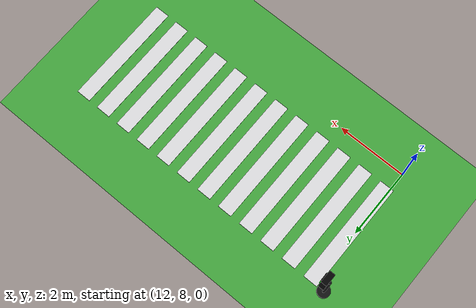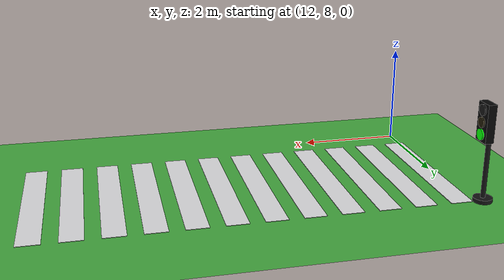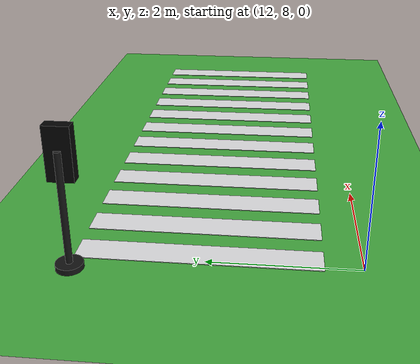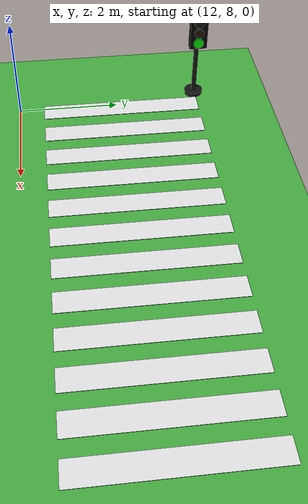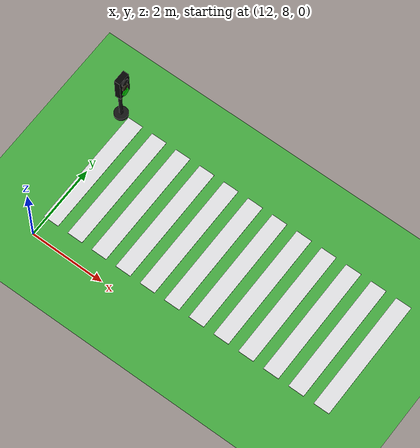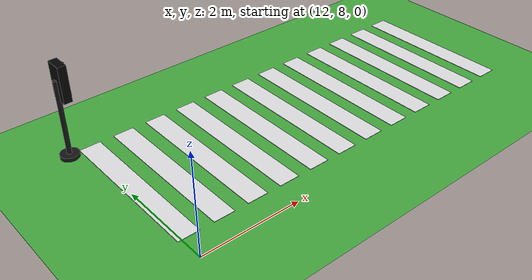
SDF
<sdf version="1.10">
 <world name="city_second">
  <model name="ground_plane">
   <static>true</static>
   <link name="link">
    <collision name="collision">
     <geometry><plane><normal>0 0 1</normal><size>300 300</size></plane></geometry>
    </collision>
    <visual name="visual">
     <geometry><plane><normal>0 0 1</normal><size>300 300</size></plane></geometry>
     <material>
      <ambient>0.280000001 0.689999998 0.25999999 1</ambient>
      <diffuse>0.280000001 0.689999998 0.25999999 1</diffuse>
      <specular>0.0299999993 0.0299999993 0.0299999993 1</specular>
     </material>
    </visual>
    <inertial>
     <mass>1</mass>
     <inertia><ixx>1</ixx><ixy>0</ixy><ixz>0</ixz><iyy>1</iyy><iyz>0</iyz><izz>1</izz></inertia>
    </inertial>
   </link>
  </model>
  <model name="crosswalk_h_1_1_south_6">
   <static>true</static>
   <pose>15.980700000000001 10.0922 0.017000000000000001 0 0 0</pose>
   <link name="stripe_1">
    <collision name="collision">
     <geometry><box><size>0.41999999999999998 3.2000000000000002 0.01</size></box></geometry>
    </collision>
    <visual name="visual">
     <geometry><box><size>0.41999999999999998 3.2000000000000002 0.01</size></box></geometry>
     <material>
      <ambient>0.920000017 0.920000017 0.930000007 1</ambient>
      <diffuse>0.920000017 0.920000017 0.930000007 1</diffuse>
      <specular>0.0299999993 0.0299999993 0.0299999993 1</specular>
     </material>
    </visual>
    <pose>-3.8500000000000001 0 0 0 0 0</pose>
    <inertial>
     <mass>1</mass>
     <inertia><ixx>1</ixx><ixy>0</ixy><ixz>0</ixz><iyy>1</iyy><iyz>0</iyz><izz>1</izz></inertia>
    </inertial>
   </link>
   <link name="stripe_2">
    <collision name="collision">
     <geometry><box><size>0.41999999999999998 3.2000000000000002 0.01</size></box></geometry>
    </collision>
    <visual name="visual">
     <geometry><box><size>0.41999999999999998 3.2000000000000002 0.01</size></box></geometry>
     <material>
      <ambient>0.920000017 0.920000017 0.930000007 1</ambient>
      <diffuse>0.920000017 0.920000017 0.930000007 1</diffuse>
      <specular>0.0299999993 0.0299999993 0.0299999993 1</specular>
     </material>
    </visual>
    <pose>-3.1500000000000004 0 0 0 0 0</pose>
    <inertial>
     <mass>1</mass>
     <inertia><ixx>1</ixx><ixy>0</ixy><ixz>0</ixz><iyy>1</iyy><iyz>0</iyz><izz>1</izz></inertia>
    </inertial>
   </link>
   <link name="stripe_3">
    <collision name="collision">
     <geometry><box><size>0.41999999999999998 3.2000000000000002 0.01</size></box></geometry>
    </collision>
    <visual name="visual">
     <geometry><box><size>0.41999999999999998 3.2000000000000002 0.01</size></box></geometry>
     <material>
      <ambient>0.920000017 0.920000017 0.930000007 1</ambient>
      <diffuse>0.920000017 0.920000017 0.930000007 1</diffuse>
      <specular>0.0299999993 0.0299999993 0.0299999993 1</specular>
     </material>
    </visual>
    <pose>-2.4500000000000011 0 0 0 0 0</pose>
    <inertial>
     <mass>1</mass>
     <inertia><ixx>1</ixx><ixy>0</ixy><ixz>0</ixz><iyy>1</iyy><iyz>0</iyz><izz>1</izz></inertia>
    </inertial>
   </link>
   <link name="stripe_4">
    <collision name="collision">
     <geometry><box><size>0.41999999999999998 3.2000000000000002 0.01</size></box></geometry>
    </collision>
    <visual name="visual">
     <geometry><box><size>0.41999999999999998 3.2000000000000002 0.01</size></box></geometry>
     <material>
      <ambient>0.920000017 0.920000017 0.930000007 1</ambient>
      <diffuse>0.920000017 0.920000017 0.930000007 1</diffuse>
      <specular>0.0299999993 0.0299999993 0.0299999993 1</specular>
     </material>
    </visual>
    <pose>-1.75 0 0 0 0 0</pose>
    <inertial>
     <mass>1</mass>
     <inertia><ixx>1</ixx><ixy>0</ixy><ixz>0</ixz><iyy>1</iyy><iyz>0</iyz><izz>1</izz></inertia>
    </inertial>
   </link>
   <link name="stripe_5">
    <collision name="collision">
     <geometry><box><size>0.41999999999999998 3.2000000000000002 0.01</size></box></geometry>
    </collision>
    <visual name="visual">
     <geometry><box><size>0.41999999999999998 3.2000000000000002 0.01</size></box></geometry>
     <material>
      <ambient>0.920000017 0.920000017 0.930000007 1</ambient>
      <diffuse>0.920000017 0.920000017 0.930000007 1</diffuse>
      <specular>0.0299999993 0.0299999993 0.0299999993 1</specular>
     </material>
    </visual>
    <pose>-1.0500000000000007 0 0 0 0 0</pose>
    <inertial>
     <mass>1</mass>
     <inertia><ixx>1</ixx><ixy>0</ixy><ixz>0</ixz><iyy>1</iyy><iyz>0</iyz><izz>1</izz></inertia>
    </inertial>
   </link>
   <link name="stripe_6">
    <collision name="collision">
     <geometry><box><size>0.41999999999999998 3.2000000000000002 0.01</size></box></geometry>
    </collision>
    <visual name="visual">
     <geometry><box><size>0.41999999999999998 3.2000000000000002 0.01</size></box></geometry>
     <material>
      <ambient>0.920000017 0.920000017 0.930000007 1</ambient>
      <diffuse>0.920000017 0.920000017 0.930000007 1</diffuse>
      <specular>0.0299999993 0.0299999993 0.0299999993 1</specular>
     </material>
    </visual>
    <pose>-0.34999999999999964 0 0 0 0 0</pose>
    <inertial>
     <mass>1</mass>
     <inertia><ixx>1</ixx><ixy>0</ixy><ixz>0</ixz><iyy>1</iyy><iyz>0</iyz><izz>1</izz></inertia>
    </inertial>
   </link>
   <link name="stripe_7">
    <collision name="collision">
     <geometry><box><size>0.41999999999999998 3.2000000000000002 0.01</size></box></geometry>
    </collision>
    <visual name="visual">
     <geometry><box><size>0.41999999999999998 3.2000000000000002 0.01</size></box></geometry>
     <material>
      <ambient>0.920000017 0.920000017 0.930000007 1</ambient>
      <diffuse>0.920000017 0.920000017 0.930000007 1</diffuse>
      <specular>0.0299999993 0.0299999993 0.0299999993 1</specular>
     </material>
    </visual>
    <pose>0.34999999999999964 0 0 0 0 0</pose>
    <inertial>
     <mass>1</mass>
     <inertia><ixx>1</ixx><ixy>0</ixy><ixz>0</ixz><iyy>1</iyy><iyz>0</iyz><izz>1</izz></inertia>
    </inertial>
   </link>
   <link name="stripe_8">
    <collision name="collision">
     <geometry><box><size>0.41999999999999998 3.2000000000000002 0.01</size></box></geometry>
    </collision>
    <visual name="visual">
     <geometry><box><size>0.41999999999999998 3.2000000000000002 0.01</size></box></geometry>
     <material>
      <ambient>0.920000017 0.920000017 0.930000007 1</ambient>
      <diffuse>0.920000017 0.920000017 0.930000007 1</diffuse>
      <specular>0.0299999993 0.0299999993 0.0299999993 1</specular>
     </material>
    </visual>
    <pose>1.0499999999999989 0 0 0 0 0</pose>
    <inertial>
     <mass>1</mass>
     <inertia><ixx>1</ixx><ixy>0</ixy><ixz>0</ixz><iyy>1</iyy><iyz>0</iyz><izz>1</izz></inertia>
    </inertial>
   </link>
   <link name="stripe_9">
    <collision name="collision">
     <geometry><box><size>0.41999999999999998 3.2000000000000002 0.01</size></box></geometry>
    </collision>
    <visual name="visual">
     <geometry><box><size>0.41999999999999998 3.2000000000000002 0.01</size></box></geometry>
     <material>
      <ambient>0.920000017 0.920000017 0.930000007 1</ambient>
      <diffuse>0.920000017 0.920000017 0.930000007 1</diffuse>
      <specular>0.0299999993 0.0299999993 0.0299999993 1</specular>
     </material>
    </visual>
    <pose>1.7499999999999982 0 0 0 0 0</pose>
    <inertial>
     <mass>1</mass>
     <inertia><ixx>1</ixx><ixy>0</ixy><ixz>0</ixz><iyy>1</iyy><iyz>0</iyz><izz>1</izz></inertia>
    </inertial>
   </link>
   <link name="stripe_10">
    <collision name="collision">
     <geometry><box><size>0.41999999999999998 3.2000000000000002 0.01</size></box></geometry>
    </collision>
    <visual name="visual">
     <geometry><box><size>0.41999999999999998 3.2000000000000002 0.01</size></box></geometry>
     <material>
      <ambient>0.920000017 0.920000017 0.930000007 1</ambient>
      <diffuse>0.920000017 0.920000017 0.930000007 1</diffuse>
      <specular>0.0299999993 0.0299999993 0.0299999993 1</specular>
     </material>
    </visual>
    <pose>2.4500000000000011 0 0 0 0 0</pose>
    <inertial>
     <mass>1</mass>
     <inertia><ixx>1</ixx><ixy>0</ixy><ixz>0</ixz><iyy>1</iyy><iyz>0</iyz><izz>1</izz></inertia>
    </inertial>
   </link>
   <link name="stripe_11">
    <collision name="collision">
     <geometry><box><size>0.41999999999999998 3.2000000000000002 0.01</size></box></geometry>
    </collision>
    <visual name="visual">
     <geometry><box><size>0.41999999999999998 3.2000000000000002 0.01</size></box></geometry>
     <material>
      <ambient>0.920000017 0.920000017 0.930000007 1</ambient>
      <diffuse>0.920000017 0.920000017 0.930000007 1</diffuse>
      <specular>0.0299999993 0.0299999993 0.0299999993 1</specular>
     </material>
    </visual>
    <pose>3.1500000000000004 0 0 0 0 0</pose>
    <inertial>
     <mass>1</mass>
     <inertia><ixx>1</ixx><ixy>0</ixy><ixz>0</ixz><iyy>1</iyy><iyz>0</iyz><izz>1</izz></inertia>
    </inertial>
   </link>
   <link name="stripe_12">
    <collision name="collision">
     <geometry><box><size>0.41999999999999998 3.2000000000000002 0.01</size></box></geometry>
    </collision>
    <visual name="visual">
     <geometry><box><size>0.41999999999999998 3.2000000000000002 0.01</size></box></geometry>
     <material>
      <ambient>0.920000017 0.920000017 0.930000007 1</ambient>
      <diffuse>0.920000017 0.920000017 0.930000007 1</diffuse>
      <specular>0.0299999993 0.0299999993 0.0299999993 1</specular>
     </material>
    </visual>
    <pose>3.8499999999999996 0 0 0 0 0</pose>
    <inertial>
     <mass>1</mass>
     <inertia><ixx>1</ixx><ixy>0</ixy><ixz>0</ixz><iyy>1</iyy><iyz>0</iyz><izz>1</izz></inertia>
    </inertial>
   </link>
  </model>
  <model name="simple_traffic_light_green_east_1_2">
   <static>true</static>
   <pose>11.719691132736202 11.671792408999575 -2.0816681711721685e-17 0 0 -1.5707999672671711</pose>
   <link name="base">
    <pose>0 0 0.040000000000000001 0 0 0</pose>
    <collision name="collision">
     <geometry>
      <cylinder><radius>0.17999999999999999</radius><length>0.080000000000000002</length></cylinder>
     </geometry>
    </collision>
    <visual name="visual">
     <geometry>
      <cylinder><radius>0.17999999999999999</radius><length>0.080000000000000002</length></cylinder>
     </geometry>
     <material>
      <ambient>0.0799999982 0.0799999982 0.0799999982 1</ambient>
      <diffuse>0.0799999982 0.0799999982 0.0799999982 1</diffuse>
      <specular>0.150000006 0.150000006 0.150000006 1</specular>
      <emissive>0 0 0 1</emissive>
     </material>
    </visual>
    <inertial>
     <mass>1</mass>
     <inertia><ixx>1</ixx><ixy>0</ixy><ixz>0</ixz><iyy>1</iyy><iyz>0</iyz><izz>1</izz></inertia>
    </inertial>
   </link>
   <link name="pole">
    <pose>-3.5527136788005009e-15 1.7763568394002505e-15 0.80000000000000004 0 0 -3.3306690738754696e-16</pose>
    <collision name="collision">
     <geometry>
      <cylinder><radius>0.044999999999999998</radius><length>1.6000000000000001</length></cylinder>
     </geometry>
    </collision>
    <visual name="visual">
     <geometry>
      <cylinder><radius>0.044999999999999998</radius><length>1.6000000000000001</length></cylinder>
     </geometry>
     <material>
      <ambient>0.0799999982 0.0799999982 0.0799999982 1</ambient>
      <diffuse>0.0799999982 0.0799999982 0.0799999982 1</diffuse>
      <specular>0.150000006 0.150000006 0.150000006 1</specular>
      <emissive>0 0 0 1</emissive>
     </material>
    </visual>
    <inertial>
     <mass>1</mass>
     <inertia><ixx>1</ixx><ixy>0</ixy><ixz>0</ixz><iyy>1</iyy><iyz>0</iyz><izz>1</izz></inertia>
    </inertial>
   </link>
   <link name="signal_box">
    <pose>0 0.090000000000001634 1.55 0 0 -3.3306690738754696e-16</pose>
    <collision name="collision">
     <geometry><box><size>0.34000000000000002 0.16 0.71999999999999997</size></box></geometry>
    </collision>
    <visual name="visual">
     <geometry><box><size>0.34000000000000002 0.16 0.71999999999999997</size></box></geometry>
     <material>
      <ambient>0.0199999996 0.0199999996 0.0199999996 1</ambient>
      <diffuse>0.0199999996 0.0199999996 0.0199999996 1</diffuse>
      <specular>0.150000006 0.150000006 0.150000006 1</specular>
      <emissive>0 0 0 1</emissive>
     </material>
    </visual>
    <inertial>
     <mass>1</mass>
     <inertia><ixx>1</ixx><ixy>0</ixy><ixz>0</ixz><iyy>1</iyy><iyz>0</iyz><izz>1</izz></inertia>
    </inertial>
   </link>
   <link name="red_lens">
    <pose>-3.5527136788005009e-15 0.18100000000000094 1.78 1.5707963267999998 -2.355138688059715e-16 1.3345785898806078e-15</pose>
    <collision name="collision">
     <geometry><cylinder><radius>0.105</radius><length>0.035000000000000003</length></cylinder></geometry>
    </collision>
    <visual name="visual">
     <geometry><cylinder><radius>0.105</radius><length>0.035000000000000003</length></cylinder></geometry>
     <material>
      <ambient>0.0799999982 0.0799999982 0.0799999982 1</ambient>
      <diffuse>0.0799999982 0.0799999982 0.0799999982 1</diffuse>
      <specular>0.150000006 0.150000006 0.150000006 1</specular>
      <emissive>0 0 0 1</emissive>
     </material>
    </visual>
    <inertial>
     <mass>1</mass>
     <inertia><ixx>1</ixx><ixy>0</ixy><ixz>0</ixz><iyy>1</iyy><iyz>0</iyz><izz>1</izz></inertia>
    </inertial>
   </link>
   <link name="yellow_lens">
    <pose>-1.7763568394002505e-15 0.18200000000000216 1.55 1.5707963267999998 -2.355138688059715e-16 1.3345785898806078e-15</pose>
    <collision name="collision">
     <geometry>
      <cylinder><radius>0.095000000000000001</radius><length>0.035000000000000003</length></cylinder>
     </geometry>
    </collision>
    <visual name="visual">
     <geometry>
      <cylinder><radius>0.095000000000000001</radius><length>0.035000000000000003</length></cylinder>
     </geometry>
     <material>
      <ambient>0.119999997 0.100000001 0.0199999996 1</ambient>
      <diffuse>0.119999997 0.100000001 0.0199999996 1</diffuse>
      <specular>0.150000006 0.150000006 0.150000006 1</specular>
      <emissive>0 0 0 1</emissive>
     </material>
    </visual>
    <inertial>
     <mass>1</mass>
     <inertia><ixx>1</ixx><ixy>0</ixy><ixz>0</ixz><iyy>1</iyy><iyz>0</iyz><izz>1</izz></inertia>
    </inertial>
   </link>
   <link name="green_lens">
    <pose>0 0.18300000000000161 1.3200000000000003 1.5707963267999998 -2.355138688059715e-16 1.3345785898806078e-15</pose>
    <collision name="collision">
     <geometry><cylinder><radius>0.105</radius><length>0.035000000000000003</length></cylinder></geometry>
    </collision>
    <visual name="visual">
     <geometry><cylinder><radius>0.105</radius><length>0.035000000000000003</length></cylinder></geometry>
     <material>
      <ambient>0.0199999996 1 0.0199999996 1</ambient>
      <diffuse>0.0199999996 1 0.0199999996 1</diffuse>
      <specular>0.150000006 0.150000006 0.150000006 1</specular>
      <emissive>0.0199999996 1 0.0199999996 1</emissive>
     </material>
    </visual>
    <inertial>
     <mass>1</mass>
     <inertia><ixx>1</ixx><ixy>0</ixy><ixz>0</ixz><iyy>1</iyy><iyz>0</iyz><izz>1</izz></inertia>
    </inertial>
   </link>
  </model>
 </world>
</sdf>
